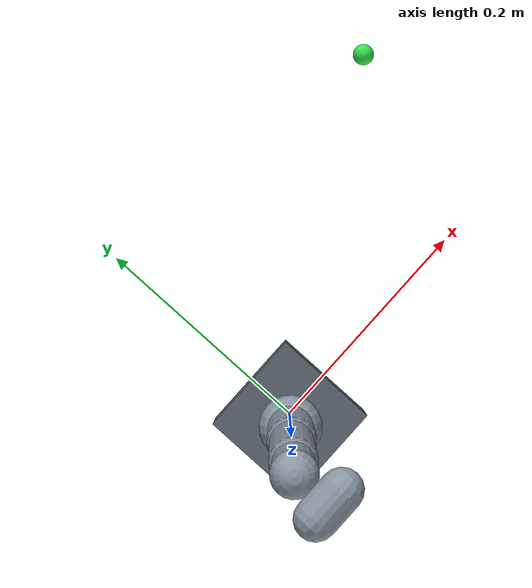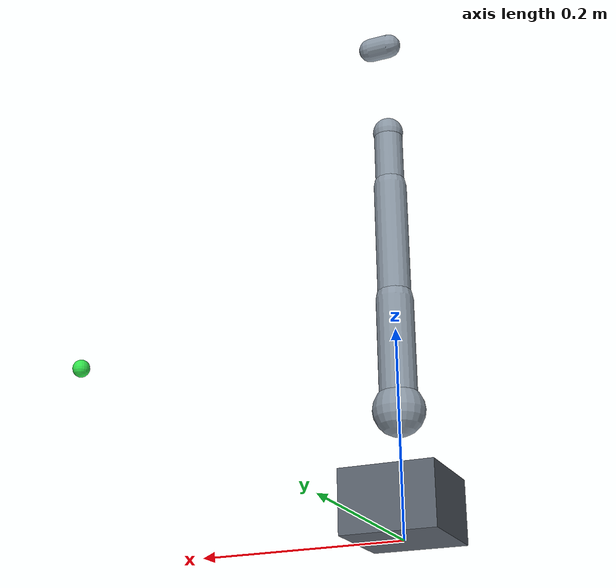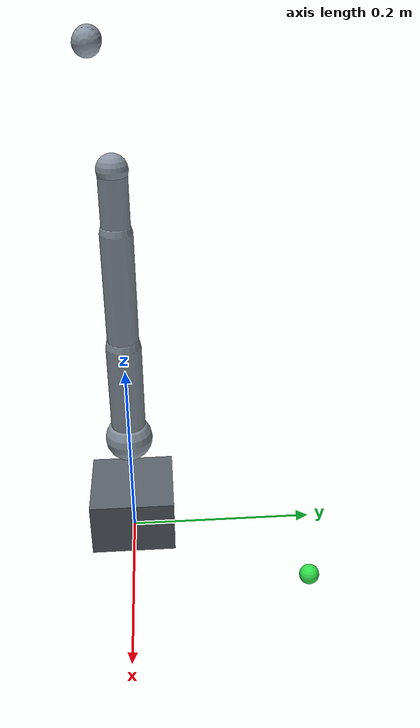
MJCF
<mujoco model="arm5dof">
  <compiler angle="radian" autolimits="true" coordinate="local" eulerseq="xyz"/>

  <option gravity="0 0 -9.81" integrator="implicitfast" timestep="0.005"/>

  <default>
    <joint type="hinge" damping="0.1" armature="0.01" limited="true"/>
    <geom type="capsule" rgba="0.55 0.6 0.65 1" contype="0" conaffinity="0"/>
    <motor ctrllimited="true" ctrlrange="-1.5 1.5" forcerange="-1 1"/>
  </default>

  <worldbody>
    <!-- Fixed base -->
    <body name="base" pos="0 0 0">
      <geom name="base_geom" type="box" size="0.045 0.045 0.03" pos="0 0 0.03"
            rgba="0.35 0.38 0.42 1"/>
      <body name="shoulder" pos="0 0 0.120">
        <joint name="j1" axis="0 0 1" range="-1.4835 1.4835"/>
        <geom name="shoulder_geom" type="sphere" size="0.025" pos="0 0 0"/>
        <!-- J1/J2 origins intersect; J1 is Z-axis and J2 is local Y-axis. -->
        <body name="shoulder_link" pos="0 0 0">
          <body name="upper_arm" pos="0 0 0">
            <joint name="j2" axis="0 1 0" range="-1.4835 1.4835"/>
            <geom name="upper_geom" type="capsule" fromto="0 0 0 0 0 0.110" size="0.018"/>
            <body name="elbow" pos="0 0 0.110">
              <joint name="j3" axis="0 1 0" range="-1.6057 1.6057"/>
              <geom name="forearm_geom" type="capsule" fromto="0 0 0 0 0 0.120" size="0.016"/>
              <body name="wrist_pitch" pos="0 0 0.120">
                <joint name="j4" axis="0 1 0" range="-1.6406 1.6057"/>
                <geom name="wrist_pitch_geom" type="capsule" fromto="0 0 0 0 0 0.060" size="0.014"/>
                <body name="wrist_roll" pos="0 0 0.060">
                  <joint name="j5" axis="0 0 1" range="-1.5708 1.5708"/>
                  <geom name="wrist_roll_geom" type="sphere" size="0.015"/>
                  <body name="tool" pos="0 -0.0132 0.110">
                    <geom name="tool_geom" type="capsule" fromto="0 0 0 0.02 0 0" size="0.012"/>
                    <site name="ee" pos="0.02 0 0" size="0.008" rgba="1 0.2 0.2 1"/>
                  </body>
                </body>
              </body>
            </body>
          </body>
        </body>
      </body>
    </body>

    <!-- Task frame: a reach target marked in world space -->
    <body name="goal" pos="0.25 0.15 0.15">
      <geom name="goal_geom" type="sphere" size="0.008" rgba="0.2 0.9 0.3 1"/>
    </body>

    <camera name="overview" pos="0.6 -0.8 0.7" xyaxes="1 0 0 0 1 0"/>
  </worldbody>

  <actuator>
    <motor name="m1" joint="j1"/>
    <motor name="m2" joint="j2"/>
    <motor name="m3" joint="j3"/>
    <motor name="m4" joint="j4"/>
    <motor name="m5" joint="j5"/>
  </actuator>

  <sensor>
    <jointpos name="qpos" joint="j1"/>
    <jointpos name="qpos2" joint="j2"/>
    <jointpos name="qpos3" joint="j3"/>
    <jointpos name="qpos4" joint="j4"/>
    <jointpos name="qpos5" joint="j5"/>
  </sensor>
</mujoco>
